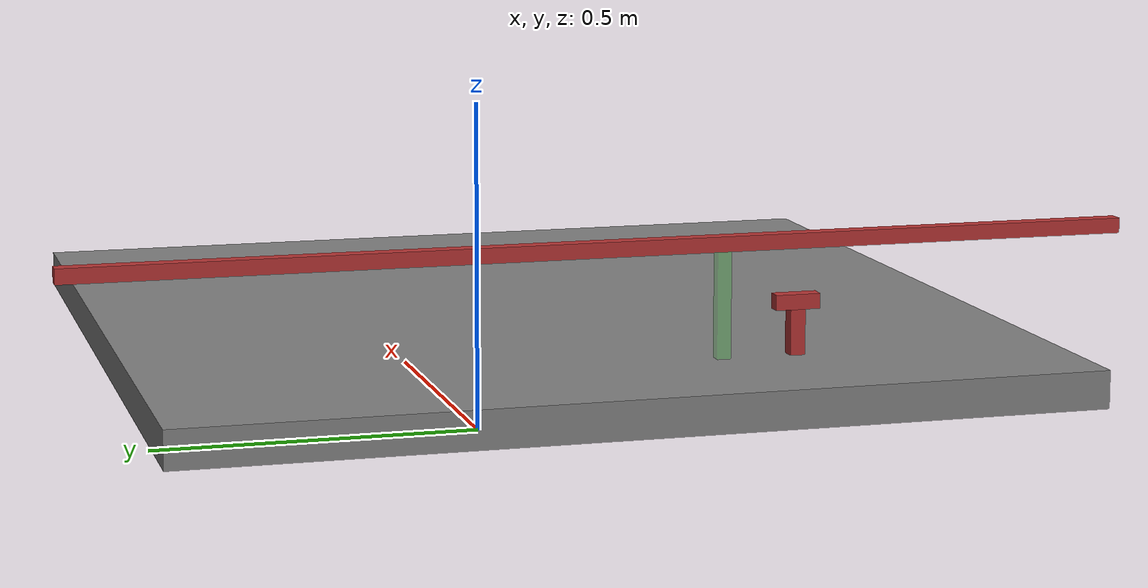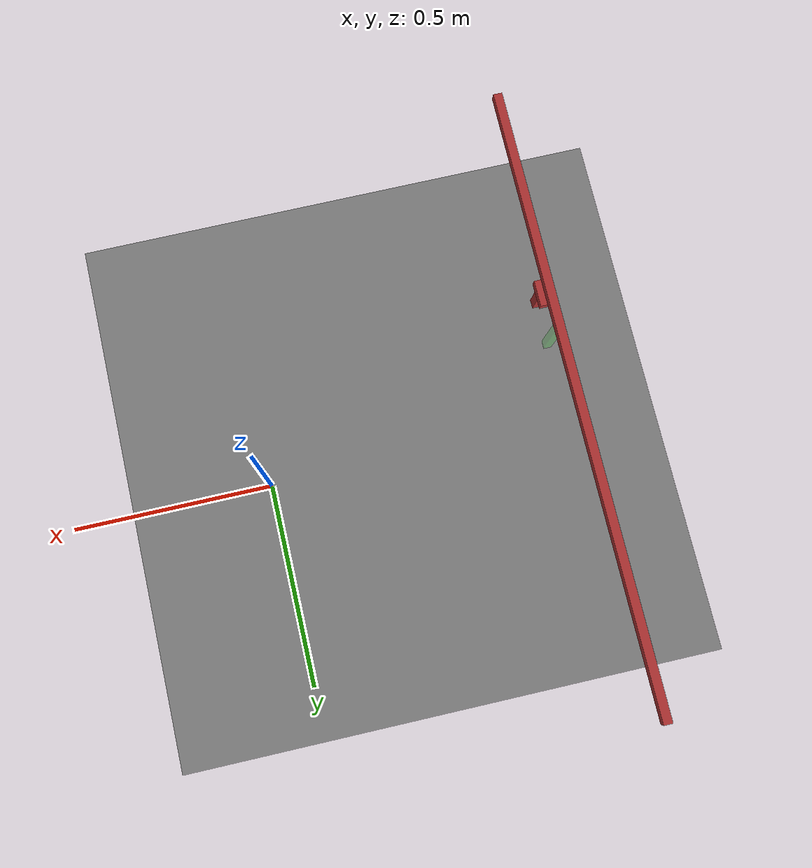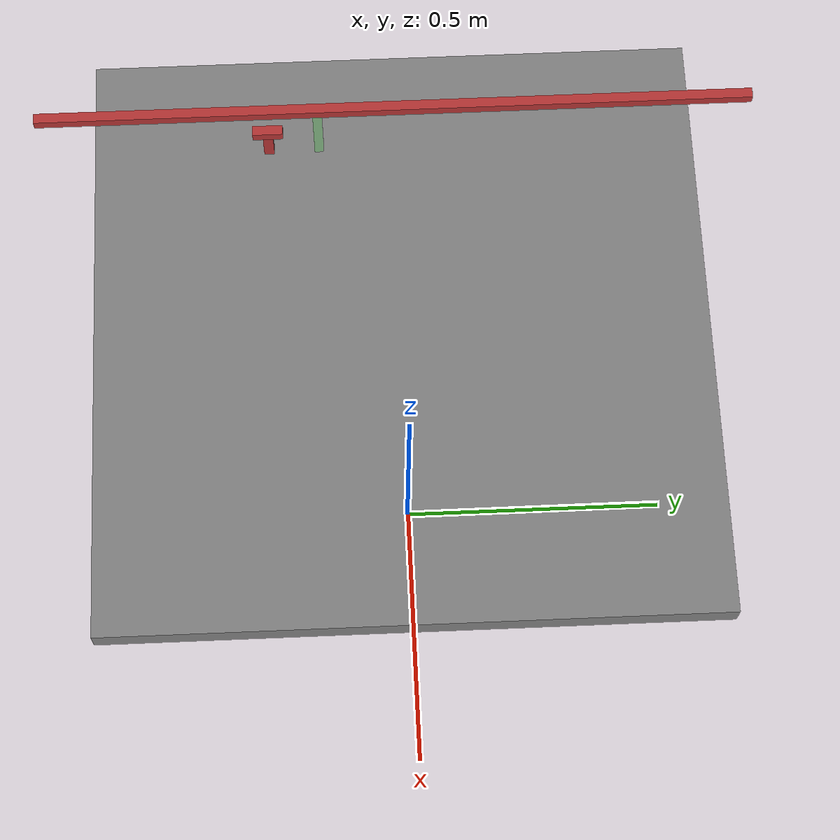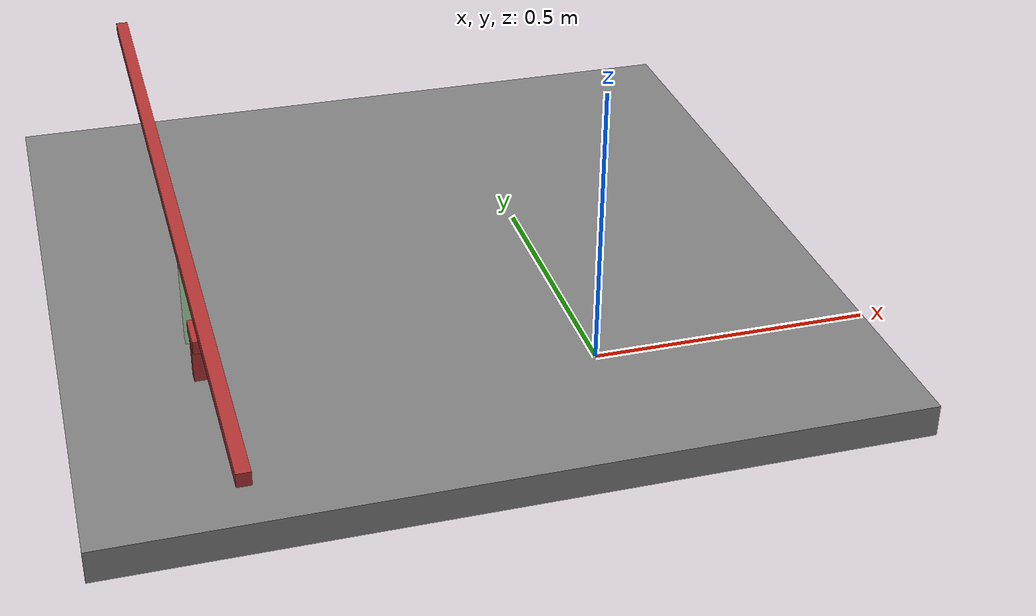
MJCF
<mujoco model="miscobj">
  <worldbody>
    <body name="table_body" pos="-0.3 0.0 0.225" quat="1 0 0 0">
      <site name="tabletop" pos="0 0 0.025" size="0.01 0.01 0.01" rgba="1 0 0 0" type="sphere" group="1" />
      <geom friction="1 0.005 0.0001" group="0" name="table_collision" pos="0 0 0" size="0.6 0.6 0.025" type="box" solref="0.001 1"/>
    </body>
    <body name="goalmark" pos="-0.7 -0.15 0.24" quat="1 0 0 0">
      <site name="goalmark_top" pos="0 0 0.01" size="0.01 0.01 0.01" rgba="1 0 0 0" type="sphere" group="1" />
      <site name="goalmark_btm" pos="0 0 -0.01" size="0.01 0.01 0.01" rgba="1 0 0 0" type="sphere" group="1" />
      <geom friction="1 0.005 0.0001" group="0" name="goalmarker_vis" pos="0 0 0.08" size="0.009 0.009 0.08" type="box" rgba="0. 1. 0. 0.2" contype="0" conaffinity="0" solref="0.001 1"/>
    </body>
    <body name="obstacle_0" pos="-0.7 -0.25 0.28" quat="1 0 0 0">
      <site name="obstacletop_0" pos="0 0 0.03" size="0.01 0.01 0.01" rgba="1 0 0 0" type="sphere" group="1" />
      <site name="obstaclebtm_0" pos="0 0 -0.03" size="0.01 0.01 0.01" rgba="1 0 0 0" type="sphere" group="1" />
      <geom friction="1 0.005 0.0001" group="0" name="obscollision_0" pos="0 0 0" size="0.01 0.01 0.03" type="box" rgba="0.7 0.2 0.2 1.0" density="1000" contype="1" conaffinity="1" solref="0.001 1"/>
    </body>
    <body name="obstacle_1" pos="-0.7 -0.25 0.32" quat="1 0 0 0">
      <site name="obstacletop_1" pos="0 0 0.01" size="0.01 0.01 0.01" rgba="1 0 0 0" type="sphere" group="1" />
      <site name="obstaclebtm_1" pos="0 0 -0.01" size="0.01 0.01 0.01" rgba="1 0 0 0" type="sphere" group="1" />
      <geom friction="1 0.005 0.0001" group="0" name="obscollision_1" pos="0 0 0" size="0.01 0.03 0.01" type="box" rgba="0.7 0.2 0.2 1.0" density="1000" contype="1" conaffinity="1" solref="0.001 1"/>
    </body>
    <body name="obstacle_2" pos="-0.7 0.0 0.4" quat="1 0 0 0">
      <site name="obstacletop_2" pos="0 0 0.01" size="0.01 0.01 0.01" rgba="1 0 0 0" type="sphere" group="1" />
      <site name="obstaclebtm_2" pos="0 0 -0.01" size="0.01 0.01 0.01" rgba="1 0 0 0" type="sphere" group="1" />
      <geom friction="1 0.005 0.0001" group="0" name="obscollision_2" pos="0 0 0" size="0.01 0.7 0.01" type="box" rgba="0.7 0.2 0.2 1.0" density="1000" contype="1" conaffinity="1" solref="0.001 1"/>
    </body>
  </worldbody>
</mujoco>
